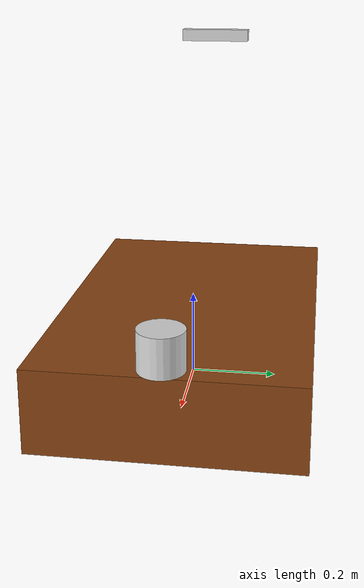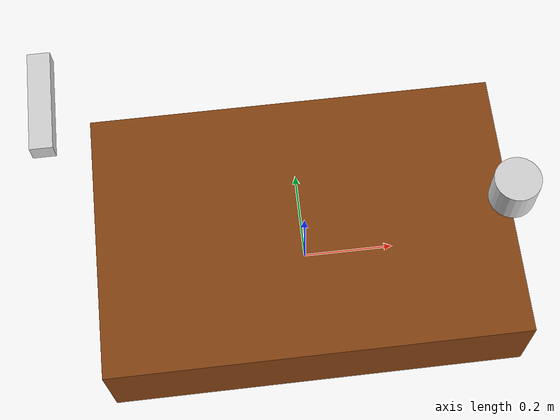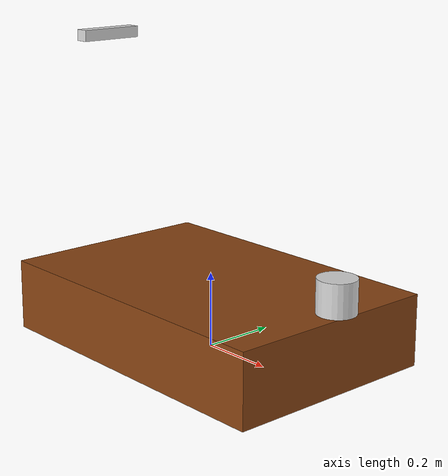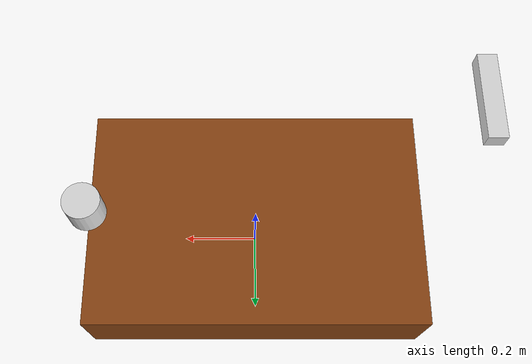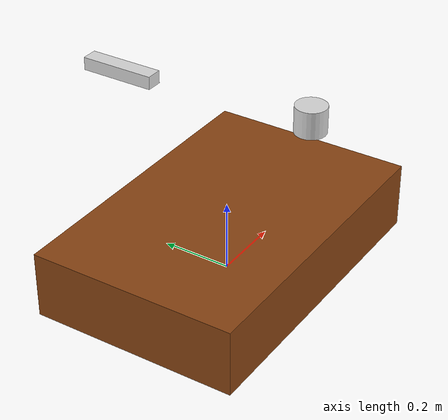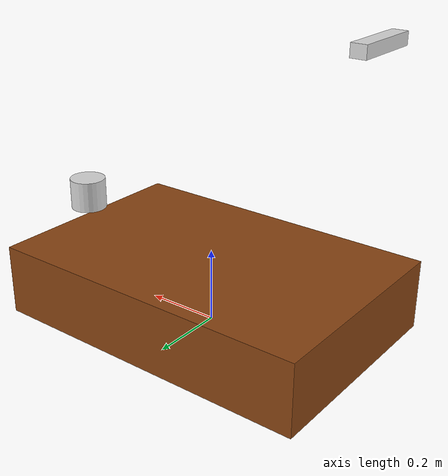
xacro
<?xml version="1.0"?>
<robot name="qev3" xmlns:xacro="http://ros.org/wiki/xacro">
    <!--                         Properties (in METERS)                      -->
    <xacro:property name="trolley_width" value="0.59" />
    <xacro:property name="trolley_length" value="0.89" />
    <xacro:property name="trolley_height" value="0.19" />

    <xacro:property name="velodyne_diameter" value="0.1" />
    <xacro:property name="velodyne_height" value="0.0869" />

    <xacro:property name="zed2i_width" value="0.17525" />
    <xacro:property name="zed2i_length" value="0.0373" />
    <xacro:property name="zed2i_height" value="0.03025" />

    <!--                             Materials                               -->
    <material name="trolley">
        <color rgba="0.54 0.27 0.075 1"/>
    </material>

    <material name="sensor">
        <color rgba="0.85 0.85 0.85 1"/>
    </material>

    <!--                           Links & Joints                            -->
    <!-- Base link (chassis) -->
    <link name="base_link">
        <visual>
            <origin xyz="0 0 ${trolley_height/2}" rpy="0 0 0" />
            <geometry>
                <box size="${trolley_length} ${trolley_width} ${trolley_height}"/>
            </geometry>
            <material name="trolley"/>
        </visual>
    </link>

    <!-- Velodyne -->
    <link name="velodyne">
        <visual>
            <origin xyz="0 0 0" rpy="0 0 0" />
            <geometry>
                <cylinder radius="${velodyne_diameter/2}" length="${velodyne_height}"/>
            </geometry>
            <material name="sensor"/>
        </visual>
    </link>
    <joint name="velodyne_joint" type="fixed">
        <parent link="base_link"/>
        <child link="velodyne"/>
        <origin xyz="${trolley_length/2} 0 ${trolley_height + velodyne_height/2 + 0.02}" rpy="0 0 0"/>
    </joint>

    <!-- ZED2i -->
    <link name="zed2i">
        <visual>
            <origin xyz="0 0 0" rpy="0 0 0" />
            <geometry>
                <box size="${zed2i_length} ${zed2i_width} ${zed2i_height}"/>
            </geometry>
            <material name="sensor"/>
        </visual>
    </link>
    <joint name="zed2i_joint" type="fixed">
        <parent link="base_link"/>
        <child link="zed2i"/>
        <origin xyz="${-trolley_length/2 + zed2i_length/2} 0 ${0.8 - zed2i_height/2}" rpy="0 0 0"/>
    </joint>

</robot>
